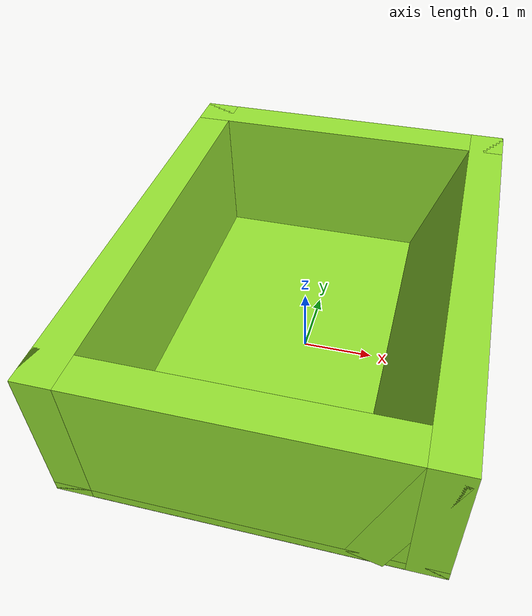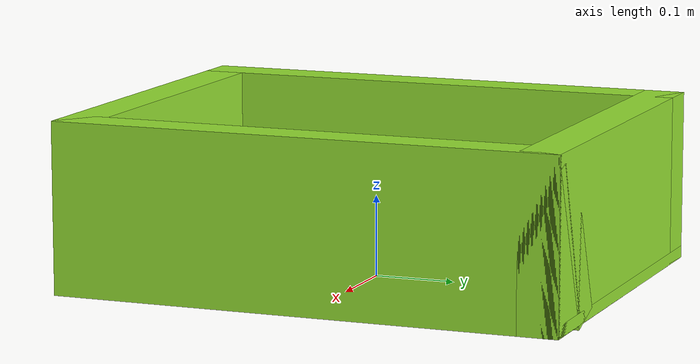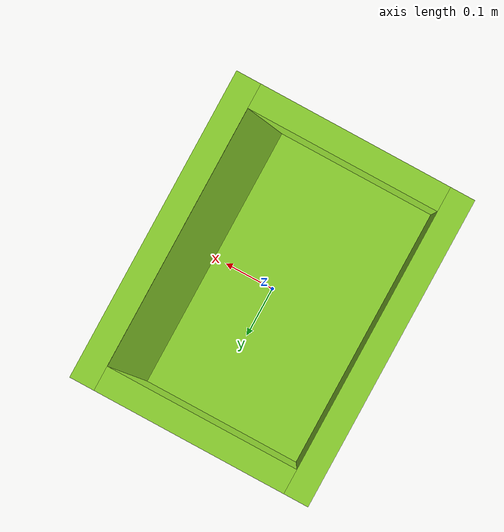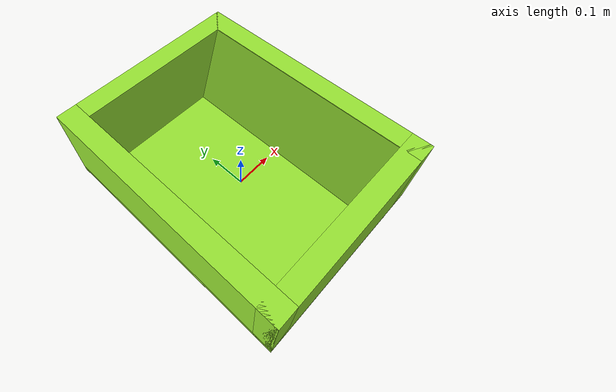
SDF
<?xml version="1.0"?>
<sdf version="1.7">
  <model name="bin_model">
    <!--
    Axes:
      +X - Pointing towards front (slope)
      +Y - Pointing to left side
      +Z - Up
    Origin:
      (0, 0, 0) at the center bottom of the bin
    -->
    <link name="bin_base">
      <inertial>
        <mass>18.70</mass>
        <inertia>
          <ixx>0.79</ixx>
          <ixy>0</ixy>
          <ixz>0</ixz>
          <iyy>0.53</iyy>
          <iyz>0</iyz>
          <izz>1.2</izz>
        </inertia>
      </inertial>
      <visual name="visual">
        <pose>0.22 0 0.105 0 0 0</pose>
        <geometry>
          <box>
            <size>0.05 0.63 0.21</size>
          </box>
        </geometry>
        <material>
          <diffuse>0.6 0.9 0.2 1.0</diffuse>
        </material>
      </visual>
      <collision name="front">
        <pose>0.22 0 0.105 0 0 0</pose>
        <geometry>
          <box>
            <size>0.05 0.63 0.21</size>
          </box>
        </geometry>
        <drake:proximity_properties>
            <drake:mesh_resolution_hint>0.05</drake:mesh_resolution_hint>
            <drake:elastic_modulus>0.5e9</drake:elastic_modulus>
            <drake:hunt_crossley_dissipation>4.5</drake:hunt_crossley_dissipation>
            <drake:mu_dynamic>1.0</drake:mu_dynamic>
            <drake:mu_static>1.0</drake:mu_static>
            <drake:soft_hydroelastic/>
        </drake:proximity_properties>
      </collision>
      <visual name="slope">
        <pose>0.182 0 0.102 0 0.35 0</pose>
        <geometry>
          <box>
            <size>0.05 0.63 0.21</size>
          </box>
        </geometry>
        <material>
          <diffuse>0.6 0.9 0.2 1.0</diffuse>
        </material>
      </visual>
      <collision name="slope">
        <pose>0.182 0 0.102 0 0.35 0</pose>
        <geometry>
          <box>
            <size>0.05 0.63 0.21</size>
          </box>
        </geometry>
        <drake:proximity_properties>
            <drake:mesh_resolution_hint>0.05</drake:mesh_resolution_hint>
            <drake:elastic_modulus>0.5e9</drake:elastic_modulus>
            <drake:hunt_crossley_dissipation>4.5</drake:hunt_crossley_dissipation>
            <drake:mu_dynamic>1.0</drake:mu_dynamic>
            <drake:mu_static>1.0</drake:mu_static>
            <drake:soft_hydroelastic/>
        </drake:proximity_properties>
      </collision>
      <visual name="back">
        <pose>-0.22 0 0.105 0 0 0</pose>
        <geometry>
          <box>
            <size>0.05 0.63 0.21</size>
          </box>
        </geometry>
        <material>
          <diffuse>0.6 0.9 0.2 1.0</diffuse>
        </material>
      </visual>
      <collision name="back">
        <pose>-0.22 0 0.105 0 0 0</pose>
        <geometry>
          <box>
            <size>0.05 0.63 0.21</size>
          </box>
        </geometry>
        <drake:proximity_properties>
            <drake:mesh_resolution_hint>0.05</drake:mesh_resolution_hint>
            <drake:elastic_modulus>0.5e9</drake:elastic_modulus>
            <drake:hunt_crossley_dissipation>4.5</drake:hunt_crossley_dissipation>
            <drake:mu_dynamic>1.0</drake:mu_dynamic>
            <drake:mu_static>1.0</drake:mu_static>
            <drake:soft_hydroelastic/>
        </drake:proximity_properties>
      </collision>
      <visual name="left">
        <pose>0 0.29 0.105 0 0 0</pose>
        <geometry>
          <box>
            <size>0.49 0.05 0.21</size>
          </box>
        </geometry>
        <material>
          <diffuse>0.6 0.9 0.2 1.0</diffuse>
        </material>
      </visual>
      <collision name="left">
        <pose>0 0.29 0.105 0 0 0</pose>
        <geometry>
          <box>
            <size>0.49 0.05 0.21</size>
          </box>
        </geometry>
        <drake:proximity_properties>
            <drake:mesh_resolution_hint>0.05</drake:mesh_resolution_hint>
            <drake:elastic_modulus>0.5e9</drake:elastic_modulus>
            <drake:hunt_crossley_dissipation>4.5</drake:hunt_crossley_dissipation>
            <drake:mu_dynamic>1.0</drake:mu_dynamic>
            <drake:mu_static>1.0</drake:mu_static>
            <drake:soft_hydroelastic/>
        </drake:proximity_properties>
      </collision>
      <visual name="right">
        <pose>0 -0.29 0.105 0 0 0</pose>
        <geometry>
          <box>
            <size>0.49 0.05 0.21</size>
          </box>
        </geometry>
        <material>
          <diffuse>0.6 0.9 0.2 1.0</diffuse>
        </material>
      </visual>
      <collision name="right">
        <pose>0 -0.29 0.105 0 0 0</pose>
        <geometry>
          <box>
            <size>0.49 0.05 0.21</size>
          </box>
        </geometry>
        <drake:proximity_properties>
            <drake:mesh_resolution_hint>0.05</drake:mesh_resolution_hint>
            <drake:elastic_modulus>0.5e9</drake:elastic_modulus>
            <drake:hunt_crossley_dissipation>4.5</drake:hunt_crossley_dissipation>
            <drake:mu_dynamic>1.0</drake:mu_dynamic>
            <drake:mu_static>1.0</drake:mu_static>
            <drake:soft_hydroelastic/>
        </drake:proximity_properties>
      </collision>
      <visual name="bottom">
        <pose>0.0 0.0 0.0075 0 0 0</pose>
        <geometry>
          <box>
            <size>0.49 0.63 0.015</size>
          </box>
        </geometry>
        <material>
          <diffuse>0.6 0.9 0.2 1.0</diffuse>
        </material>
      </visual>
      <collision name="bottom">
        <pose>0.0 0.0 0.0075 0 0 0</pose>
        <geometry>
          <box>
            <size>0.49 0.63 0.015</size>
          </box>
        </geometry>
        <drake:proximity_properties>
            <drake:mesh_resolution_hint>0.05</drake:mesh_resolution_hint>
            <drake:elastic_modulus>0.5e9</drake:elastic_modulus>
            <drake:hunt_crossley_dissipation>4.5</drake:hunt_crossley_dissipation>
            <drake:mu_dynamic>1.0</drake:mu_dynamic>
            <drake:mu_static>1.0</drake:mu_static>
            <drake:soft_hydroelastic/>
        </drake:proximity_properties>
      </collision>
    </link>
    <frame name="bin_front_top_center">
      <pose relative_to="bin_base">0.22 0 0.21 0 0 0</pose>
    </frame>
  </model>
</sdf>
